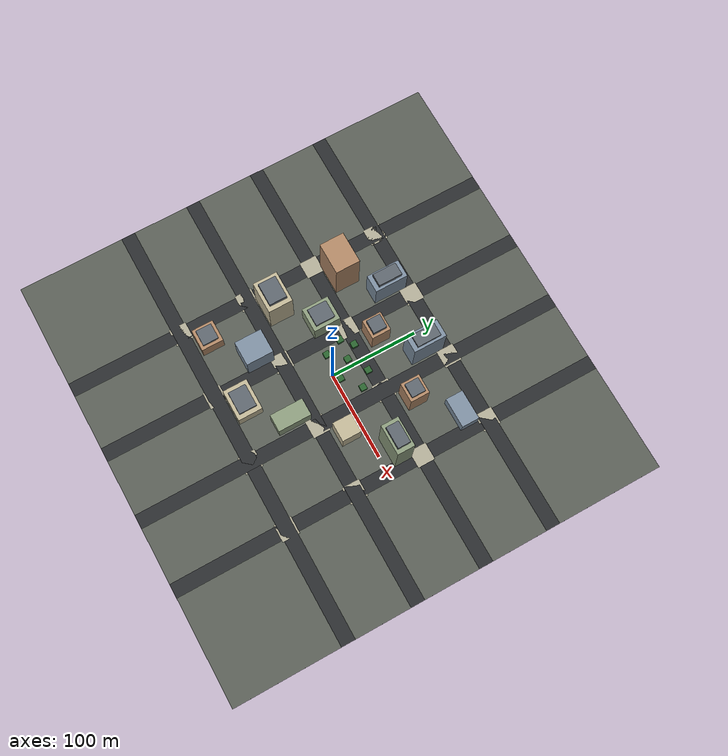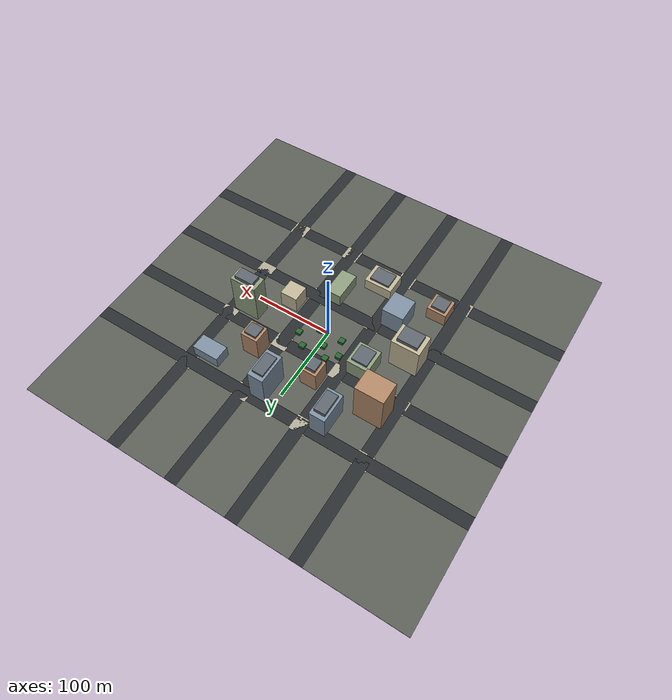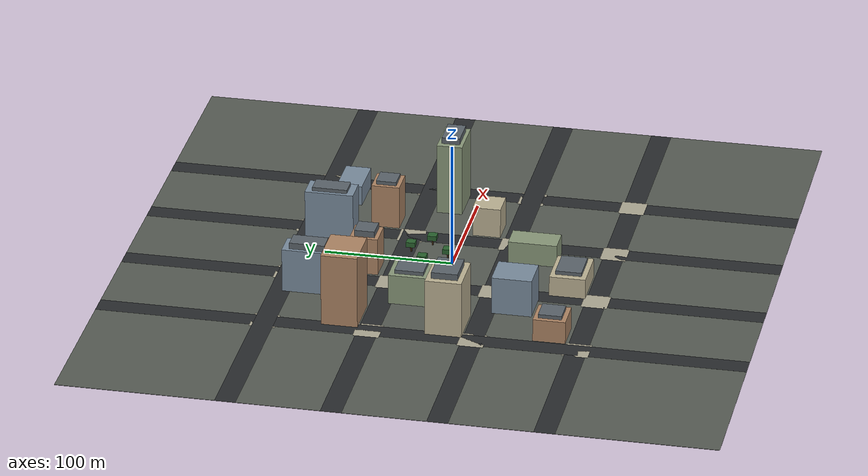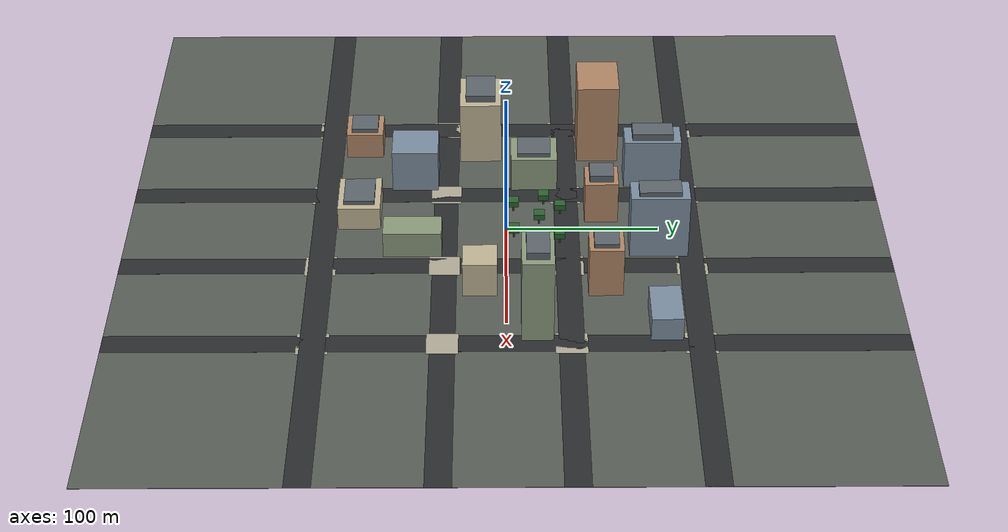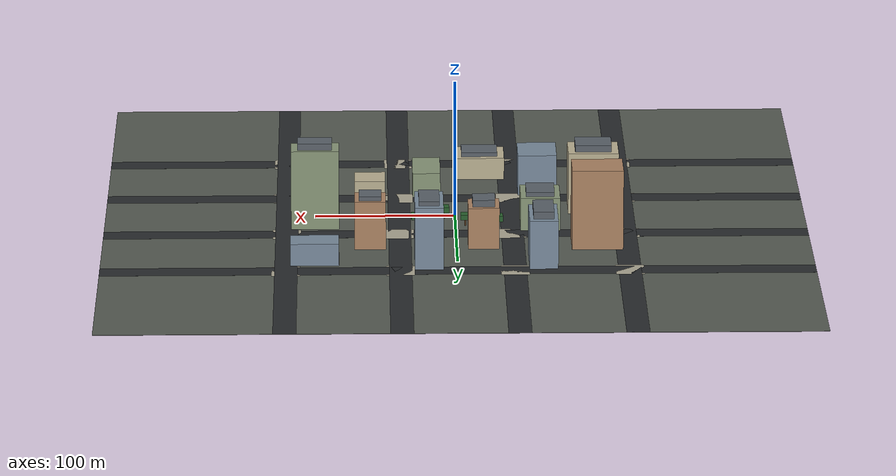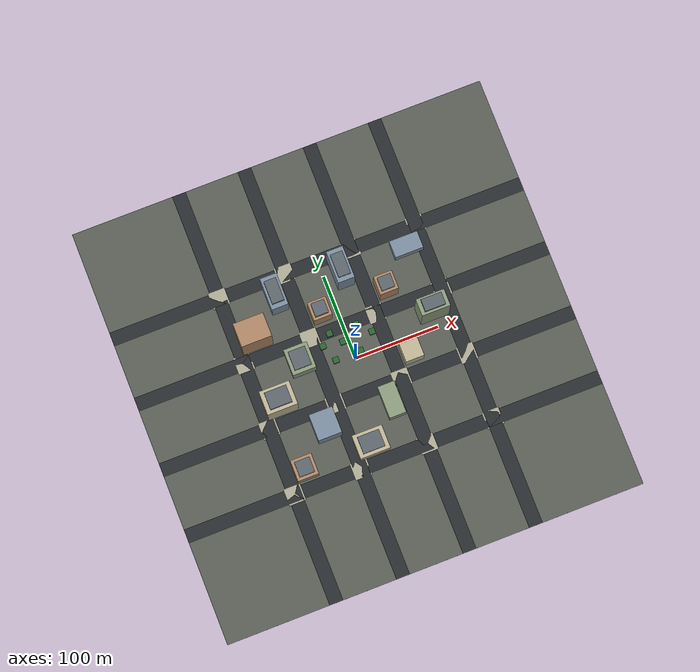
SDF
<?xml version="1.0"?>
<!-- Compact urban visual-navigation world. World/body coordinates are ENU. -->
<sdf version="1.10">
  <world name="city">
    <physics name="1ms" type="ignored"><max_step_size>0.001</max_step_size><real_time_factor>1.0</real_time_factor></physics>
    <plugin filename="gz-sim-physics-system" name="gz::sim::systems::Physics"/>
    <plugin filename="gz-sim-user-commands-system" name="gz::sim::systems::UserCommands"/>
    <plugin filename="gz-sim-scene-broadcaster-system" name="gz::sim::systems::SceneBroadcaster"/>
    <plugin filename="gz-sim-sensors-system" name="gz::sim::systems::Sensors"><render_engine>ogre2</render_engine></plugin>
    <plugin filename="gz-sim-imu-system" name="gz::sim::systems::Imu"/>
    <plugin filename="gz-sim-air-pressure-system" name="gz::sim::systems::AirPressure"/>
    <plugin filename="gz-sim-navsat-system" name="gz::sim::systems::NavSat"/>
    <spherical_coordinates><surface_model>EARTH_WGS84</surface_model><world_frame_orientation>ENU</world_frame_orientation>
      <latitude_deg>25.0330</latitude_deg><longitude_deg>121.5654</longitude_deg><elevation>10</elevation><heading_deg>0</heading_deg></spherical_coordinates>
    <scene><ambient>0.62 0.62 0.62 1</ambient><background>0.62 0.72 0.82 1</background><shadows>false</shadows></scene>
    <light type="directional" name="sun"><cast_shadows>false</cast_shadows><pose>0 0 150 0 0 0</pose>
      <diffuse>0.95 0.94 0.88 1</diffuse><specular>0.15 0.15 0.15 1</specular><direction>-0.4 0.2 -0.9</direction></light>
    <include><uri>model://city</uri></include>
  </world>
</sdf>

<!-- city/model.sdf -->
<sdf version="1.9"><model name="city"><static>true</static><link name="ground"><pose>0.00 0.00 -0.15 0 0 0</pose>
          <visual name="visual"><geometry><box><size>500.00 500.00 0.30</size></box></geometry>
          <material><ambient>0.34 0.36 0.33 1</ambient><diffuse>0.34 0.36 0.33 1</diffuse></material></visual>
          <collision name="collision"><geometry><box><size>500.00 500.00 0.30</size></box></geometry></collision></link><link name="road_x_0"><pose>-120.00 0.00 0.01 0 0 0</pose>
          <visual name="visual"><geometry><box><size>16.00 500.00 0.01</size></box></geometry>
          <material><ambient>0.16 0.17 0.18 1</ambient><diffuse>0.16 0.17 0.18 1</diffuse></material></visual>
          <collision name="collision"><geometry><box><size>16.00 500.00 0.01</size></box></geometry></collision></link><link name="road_x_1"><pose>-40.00 0.00 0.01 0 0 0</pose>
          <visual name="visual"><geometry><box><size>16.00 500.00 0.01</size></box></geometry>
          <material><ambient>0.16 0.17 0.18 1</ambient><diffuse>0.16 0.17 0.18 1</diffuse></material></visual>
          <collision name="collision"><geometry><box><size>16.00 500.00 0.01</size></box></geometry></collision></link><link name="road_x_2"><pose>40.00 0.00 0.01 0 0 0</pose>
          <visual name="visual"><geometry><box><size>16.00 500.00 0.01</size></box></geometry>
          <material><ambient>0.16 0.17 0.18 1</ambient><diffuse>0.16 0.17 0.18 1</diffuse></material></visual>
          <collision name="collision"><geometry><box><size>16.00 500.00 0.01</size></box></geometry></collision></link><link name="road_x_3"><pose>120.00 0.00 0.01 0 0 0</pose>
          <visual name="visual"><geometry><box><size>16.00 500.00 0.01</size></box></geometry>
          <material><ambient>0.16 0.17 0.18 1</ambient><diffuse>0.16 0.17 0.18 1</diffuse></material></visual>
          <collision name="collision"><geometry><box><size>16.00 500.00 0.01</size></box></geometry></collision></link><link name="road_y_0"><pose>0.00 -120.00 0.01 0 0 0</pose>
          <visual name="visual"><geometry><box><size>500.00 16.00 0.01</size></box></geometry>
          <material><ambient>0.16 0.17 0.18 1</ambient><diffuse>0.16 0.17 0.18 1</diffuse></material></visual>
          <collision name="collision"><geometry><box><size>500.00 16.00 0.01</size></box></geometry></collision></link><link name="road_y_1"><pose>0.00 -40.00 0.01 0 0 0</pose>
          <visual name="visual"><geometry><box><size>500.00 16.00 0.01</size></box></geometry>
          <material><ambient>0.16 0.17 0.18 1</ambient><diffuse>0.16 0.17 0.18 1</diffuse></material></visual>
          <collision name="collision"><geometry><box><size>500.00 16.00 0.01</size></box></geometry></collision></link><link name="road_y_2"><pose>0.00 40.00 0.01 0 0 0</pose>
          <visual name="visual"><geometry><box><size>500.00 16.00 0.01</size></box></geometry>
          <material><ambient>0.16 0.17 0.18 1</ambient><diffuse>0.16 0.17 0.18 1</diffuse></material></visual>
          <collision name="collision"><geometry><box><size>500.00 16.00 0.01</size></box></geometry></collision></link><link name="road_y_3"><pose>0.00 120.00 0.01 0 0 0</pose>
          <visual name="visual"><geometry><box><size>500.00 16.00 0.01</size></box></geometry>
          <material><ambient>0.16 0.17 0.18 1</ambient><diffuse>0.16 0.17 0.18 1</diffuse></material></visual>
          <collision name="collision"><geometry><box><size>500.00 16.00 0.01</size></box></geometry></collision></link><link name="crosswalk_0_0"><pose>-120.00 -120.00 0.01 0 0 0</pose>
          <visual name="visual"><geometry><box><size>20.00 20.00 0.01</size></box></geometry>
          <material><ambient>0.68 0.66 0.58 1</ambient><diffuse>0.68 0.66 0.58 1</diffuse></material></visual>
          <collision name="collision"><geometry><box><size>20.00 20.00 0.01</size></box></geometry></collision></link><link name="crosswalk_0_1"><pose>-120.00 -40.00 0.01 0 0 0</pose>
          <visual name="visual"><geometry><box><size>20.00 20.00 0.01</size></box></geometry>
          <material><ambient>0.68 0.66 0.58 1</ambient><diffuse>0.68 0.66 0.58 1</diffuse></material></visual>
          <collision name="collision"><geometry><box><size>20.00 20.00 0.01</size></box></geometry></collision></link><link name="crosswalk_0_2"><pose>-120.00 40.00 0.01 0 0 0</pose>
          <visual name="visual"><geometry><box><size>20.00 20.00 0.01</size></box></geometry>
          <material><ambient>0.68 0.66 0.58 1</ambient><diffuse>0.68 0.66 0.58 1</diffuse></material></visual>
          <collision name="collision"><geometry><box><size>20.00 20.00 0.01</size></box></geometry></collision></link><link name="crosswalk_0_3"><pose>-120.00 120.00 0.01 0 0 0</pose>
          <visual name="visual"><geometry><box><size>20.00 20.00 0.01</size></box></geometry>
          <material><ambient>0.68 0.66 0.58 1</ambient><diffuse>0.68 0.66 0.58 1</diffuse></material></visual>
          <collision name="collision"><geometry><box><size>20.00 20.00 0.01</size></box></geometry></collision></link><link name="crosswalk_1_0"><pose>-40.00 -120.00 0.01 0 0 0</pose>
          <visual name="visual"><geometry><box><size>20.00 20.00 0.01</size></box></geometry>
          <material><ambient>0.68 0.66 0.58 1</ambient><diffuse>0.68 0.66 0.58 1</diffuse></material></visual>
          <collision name="collision"><geometry><box><size>20.00 20.00 0.01</size></box></geometry></collision></link><link name="crosswalk_1_1"><pose>-40.00 -40.00 0.01 0 0 0</pose>
          <visual name="visual"><geometry><box><size>20.00 20.00 0.01</size></box></geometry>
          <material><ambient>0.68 0.66 0.58 1</ambient><diffuse>0.68 0.66 0.58 1</diffuse></material></visual>
          <collision name="collision"><geometry><box><size>20.00 20.00 0.01</size></box></geometry></collision></link><link name="crosswalk_1_2"><pose>-40.00 40.00 0.01 0 0 0</pose>
          <visual name="visual"><geometry><box><size>20.00 20.00 0.01</size></box></geometry>
          <material><ambient>0.68 0.66 0.58 1</ambient><diffuse>0.68 0.66 0.58 1</diffuse></material></visual>
          <collision name="collision"><geometry><box><size>20.00 20.00 0.01</size></box></geometry></collision></link><link name="crosswalk_1_3"><pose>-40.00 120.00 0.01 0 0 0</pose>
          <visual name="visual"><geometry><box><size>20.00 20.00 0.01</size></box></geometry>
          <material><ambient>0.68 0.66 0.58 1</ambient><diffuse>0.68 0.66 0.58 1</diffuse></material></visual>
          <collision name="collision"><geometry><box><size>20.00 20.00 0.01</size></box></geometry></collision></link><link name="crosswalk_2_0"><pose>40.00 -120.00 0.01 0 0 0</pose>
          <visual name="visual"><geometry><box><size>20.00 20.00 0.01</size></box></geometry>
          <material><ambient>0.68 0.66 0.58 1</ambient><diffuse>0.68 0.66 0.58 1</diffuse></material></visual>
          <collision name="collision"><geometry><box><size>20.00 20.00 0.01</size></box></geometry></collision></link><link name="crosswalk_2_1"><pose>40.00 -40.00 0.01 0 0 0</pose>
          <visual name="visual"><geometry><box><size>20.00 20.00 0.01</size></box></geometry>
          <material><ambient>0.68 0.66 0.58 1</ambient><diffuse>0.68 0.66 0.58 1</diffuse></material></visual>
          <collision name="collision"><geometry><box><size>20.00 20.00 0.01</size></box></geometry></collision></link><link name="crosswalk_2_2"><pose>40.00 40.00 0.01 0 0 0</pose>
          <visual name="visual"><geometry><box><size>20.00 20.00 0.01</size></box></geometry>
          <material><ambient>0.68 0.66 0.58 1</ambient><diffuse>0.68 0.66 0.58 1</diffuse></material></visual>
          <collision name="collision"><geometry><box><size>20.00 20.00 0.01</size></box></geometry></collision></link><link name="crosswalk_2_3"><pose>40.00 120.00 0.01 0 0 0</pose>
          <visual name="visual"><geometry><box><size>20.00 20.00 0.01</size></box></geometry>
          <material><ambient>0.68 0.66 0.58 1</ambient><diffuse>0.68 0.66 0.58 1</diffuse></material></visual>
          <collision name="collision"><geometry><box><size>20.00 20.00 0.01</size></box></geometry></collision></link><link name="crosswalk_3_0"><pose>120.00 -120.00 0.01 0 0 0</pose>
          <visual name="visual"><geometry><box><size>20.00 20.00 0.01</size></box></geometry>
          <material><ambient>0.68 0.66 0.58 1</ambient><diffuse>0.68 0.66 0.58 1</diffuse></material></visual>
          <collision name="collision"><geometry><box><size>20.00 20.00 0.01</size></box></geometry></collision></link><link name="crosswalk_3_1"><pose>120.00 -40.00 0.01 0 0 0</pose>
          <visual name="visual"><geometry><box><size>20.00 20.00 0.01</size></box></geometry>
          <material><ambient>0.68 0.66 0.58 1</ambient><diffuse>0.68 0.66 0.58 1</diffuse></material></visual>
          <collision name="collision"><geometry><box><size>20.00 20.00 0.01</size></box></geometry></collision></link><link name="crosswalk_3_2"><pose>120.00 40.00 0.01 0 0 0</pose>
          <visual name="visual"><geometry><box><size>20.00 20.00 0.01</size></box></geometry>
          <material><ambient>0.68 0.66 0.58 1</ambient><diffuse>0.68 0.66 0.58 1</diffuse></material></visual>
          <collision name="collision"><geometry><box><size>20.00 20.00 0.01</size></box></geometry></collision></link><link name="crosswalk_3_3"><pose>120.00 120.00 0.01 0 0 0</pose>
          <visual name="visual"><geometry><box><size>20.00 20.00 0.01</size></box></geometry>
          <material><ambient>0.68 0.66 0.58 1</ambient><diffuse>0.68 0.66 0.58 1</diffuse></material></visual>
          <collision name="collision"><geometry><box><size>20.00 20.00 0.01</size></box></geometry></collision></link><link name="building_0"><pose>-99.00 -97.00 9.08 0 0 0</pose>
          <visual name="visual"><geometry><box><size>25.00 25.00 18.00</size></box></geometry>
          <material><ambient>0.68 0.52 0.39 1</ambient><diffuse>0.68 0.52 0.39 1</diffuse></material></visual>
          <collision name="collision"><geometry><box><size>25.00 25.00 18.00</size></box></geometry></collision></link><link name="roof_0"><pose>-99.00 -97.00 19.58 0 0 0</pose>
          <visual name="visual"><geometry><box><size>18.00 18.00 3.00</size></box></geometry>
          <material><ambient>0.36 0.39 0.42 1</ambient><diffuse>0.36 0.39 0.42 1</diffuse></material></visual>
          <collision name="collision"><geometry><box><size>18.00 18.00 3.00</size></box></geometry></collision></link><link name="building_1"><pose>-60.00 -61.00 15.08 0 0 0</pose>
          <visual name="visual"><geometry><box><size>28.00 31.00 30.00</size></box></geometry>
          <material><ambient>0.48 0.55 0.62 1</ambient><diffuse>0.48 0.55 0.62 1</diffuse></material></visual>
          <collision name="collision"><geometry><box><size>28.00 31.00 30.00</size></box></geometry></collision></link><link name="building_2"><pose>-99.00 -17.00 22.58 0 0 0</pose>
          <visual name="visual"><geometry><box><size>36.00 28.00 45.00</size></box></geometry>
          <material><ambient>0.74 0.70 0.58 1</ambient><diffuse>0.74 0.70 0.58 1</diffuse></material></visual>
          <collision name="collision"><geometry><box><size>36.00 28.00 45.00</size></box></geometry></collision></link><link name="roof_2"><pose>-99.00 -17.00 47.58 0 0 0</pose>
          <visual name="visual"><geometry><box><size>25.92 20.16 5.00</size></box></geometry>
          <material><ambient>0.36 0.39 0.42 1</ambient><diffuse>0.36 0.39 0.42 1</diffuse></material></visual>
          <collision name="collision"><geometry><box><size>25.92 20.16 5.00</size></box></geometry></collision></link><link name="building_3"><pose>-60.00 19.00 12.08 0 0 0</pose>
          <visual name="visual"><geometry><box><size>28.00 31.00 24.00</size></box></geometry>
          <material><ambient>0.54 0.60 0.48 1</ambient><diffuse>0.54 0.60 0.48 1</diffuse></material></visual>
          <collision name="collision"><geometry><box><size>28.00 31.00 24.00</size></box></geometry></collision></link><link name="roof_3"><pose>-60.00 19.00 25.58 0 0 0</pose>
          <visual name="visual"><geometry><box><size>20.16 22.32 3.00</size></box></geometry>
          <material><ambient>0.36 0.39 0.42 1</ambient><diffuse>0.36 0.39 0.42 1</diffuse></material></visual>
          <collision name="collision"><geometry><box><size>20.16 22.32 3.00</size></box></geometry></collision></link><link name="building_4"><pose>-99.00 63.00 29.08 0 0 0</pose>
          <visual name="visual"><geometry><box><size>36.00 28.00 58.00</size></box></geometry>
          <material><ambient>0.68 0.52 0.39 1</ambient><diffuse>0.68 0.52 0.39 1</diffuse></material></visual>
          <collision name="collision"><geometry><box><size>36.00 28.00 58.00</size></box></geometry></collision></link><link name="building_5"><pose>-60.00 99.00 17.58 0 0 0</pose>
          <visual name="visual"><geometry><box><size>20.00 38.00 35.00</size></box></geometry>
          <material><ambient>0.48 0.55 0.62 1</ambient><diffuse>0.48 0.55 0.62 1</diffuse></material></visual>
          <collision name="collision"><geometry><box><size>20.00 38.00 35.00</size></box></geometry></collision></link><link name="roof_5"><pose>-60.00 99.00 37.58 0 0 0</pose>
          <visual name="visual"><geometry><box><size>14.40 27.36 5.00</size></box></geometry>
          <material><ambient>0.36 0.39 0.42 1</ambient><diffuse>0.36 0.39 0.42 1</diffuse></material></visual>
          <collision name="collision"><geometry><box><size>14.40 27.36 5.00</size></box></geometry></collision></link><link name="building_6"><pose>-19.00 -97.00 8.08 0 0 0</pose>
          <visual name="visual"><geometry><box><size>36.00 28.00 16.00</size></box></geometry>
          <material><ambient>0.74 0.70 0.58 1</ambient><diffuse>0.74 0.70 0.58 1</diffuse></material></visual>
          <collision name="collision"><geometry><box><size>36.00 28.00 16.00</size></box></geometry></collision></link><link name="roof_6"><pose>-19.00 -97.00 17.58 0 0 0</pose>
          <visual name="visual"><geometry><box><size>25.92 20.16 3.00</size></box></geometry>
          <material><ambient>0.36 0.39 0.42 1</ambient><diffuse>0.36 0.39 0.42 1</diffuse></material></visual>
          <collision name="collision"><geometry><box><size>25.92 20.16 3.00</size></box></geometry></collision></link><link name="building_7"><pose>20.00 -61.00 9.08 0 0 0</pose>
          <visual name="visual"><geometry><box><size>20.00 38.00 18.00</size></box></geometry>
          <material><ambient>0.54 0.60 0.48 1</ambient><diffuse>0.54 0.60 0.48 1</diffuse></material></visual>
          <collision name="collision"><geometry><box><size>20.00 38.00 18.00</size></box></geometry></collision></link><link name="building_8"><pose>-19.00 63.00 15.08 0 0 0</pose>
          <visual name="visual"><geometry><box><size>22.00 22.00 30.00</size></box></geometry>
          <material><ambient>0.68 0.52 0.39 1</ambient><diffuse>0.68 0.52 0.39 1</diffuse></material></visual>
          <collision name="collision"><geometry><box><size>22.00 22.00 30.00</size></box></geometry></collision></link><link name="roof_8"><pose>-19.00 63.00 32.58 0 0 0</pose>
          <visual name="visual"><geometry><box><size>15.84 15.84 5.00</size></box></geometry>
          <material><ambient>0.36 0.39 0.42 1</ambient><diffuse>0.36 0.39 0.42 1</diffuse></material></visual>
          <collision name="collision"><geometry><box><size>15.84 15.84 5.00</size></box></geometry></collision></link><link name="building_9"><pose>20.00 99.00 22.58 0 0 0</pose>
          <visual name="visual"><geometry><box><size>20.00 38.00 45.00</size></box></geometry>
          <material><ambient>0.48 0.55 0.62 1</ambient><diffuse>0.48 0.55 0.62 1</diffuse></material></visual>
          <collision name="collision"><geometry><box><size>20.00 38.00 45.00</size></box></geometry></collision></link><link name="roof_9"><pose>20.00 99.00 46.58 0 0 0</pose>
          <visual name="visual"><geometry><box><size>14.40 27.36 3.00</size></box></geometry>
          <material><ambient>0.36 0.39 0.42 1</ambient><diffuse>0.36 0.39 0.42 1</diffuse></material></visual>
          <collision name="collision"><geometry><box><size>14.40 27.36 3.00</size></box></geometry></collision></link><link name="building_10"><pose>61.00 -17.00 12.08 0 0 0</pose>
          <visual name="visual"><geometry><box><size>22.00 22.00 24.00</size></box></geometry>
          <material><ambient>0.74 0.70 0.58 1</ambient><diffuse>0.74 0.70 0.58 1</diffuse></material></visual>
          <collision name="collision"><geometry><box><size>22.00 22.00 24.00</size></box></geometry></collision></link><link name="building_11"><pose>100.00 19.00 29.08 0 0 0</pose>
          <visual name="visual"><geometry><box><size>34.00 20.00 58.00</size></box></geometry>
          <material><ambient>0.54 0.60 0.48 1</ambient><diffuse>0.54 0.60 0.48 1</diffuse></material></visual>
          <collision name="collision"><geometry><box><size>34.00 20.00 58.00</size></box></geometry></collision></link><link name="roof_11"><pose>100.00 19.00 60.58 0 0 0</pose>
          <visual name="visual"><geometry><box><size>24.48 14.40 5.00</size></box></geometry>
          <material><ambient>0.36 0.39 0.42 1</ambient><diffuse>0.36 0.39 0.42 1</diffuse></material></visual>
          <collision name="collision"><geometry><box><size>24.48 14.40 5.00</size></box></geometry></collision></link><link name="building_12"><pose>61.00 63.00 17.58 0 0 0</pose>
          <visual name="visual"><geometry><box><size>22.00 22.00 35.00</size></box></geometry>
          <material><ambient>0.68 0.52 0.39 1</ambient><diffuse>0.68 0.52 0.39 1</diffuse></material></visual>
          <collision name="collision"><geometry><box><size>22.00 22.00 35.00</size></box></geometry></collision></link><link name="roof_12"><pose>61.00 63.00 36.58 0 0 0</pose>
          <visual name="visual"><geometry><box><size>15.84 15.84 3.00</size></box></geometry>
          <material><ambient>0.36 0.39 0.42 1</ambient><diffuse>0.36 0.39 0.42 1</diffuse></material></visual>
          <collision name="collision"><geometry><box><size>15.84 15.84 3.00</size></box></geometry></collision></link><link name="building_13"><pose>100.00 99.00 8.08 0 0 0</pose>
          <visual name="visual"><geometry><box><size>34.00 20.00 16.00</size></box></geometry>
          <material><ambient>0.48 0.55 0.62 1</ambient><diffuse>0.48 0.55 0.62 1</diffuse></material></visual>
          <collision name="collision"><geometry><box><size>34.00 20.00 16.00</size></box></geometry></collision></link><link name="tree_trunk_0"><pose>-30.00 25.00 3.20 0 0 0</pose>
          <visual name="visual"><geometry><box><size>1.20 1.20 6.40</size></box></geometry>
          <material><ambient>0.30 0.20 0.10 1</ambient><diffuse>0.30 0.20 0.10 1</diffuse></material></visual>
          <collision name="collision"><geometry><box><size>1.20 1.20 6.40</size></box></geometry></collision></link><link name="tree_crown_0"><pose>-30.00 25.00 7.00 0 0 0</pose>
          <visual name="visual"><geometry><box><size>7.00 7.00 4.00</size></box></geometry>
          <material><ambient>0.16 0.38 0.18 1</ambient><diffuse>0.16 0.38 0.18 1</diffuse></material></visual>
          <collision name="collision"><geometry><box><size>7.00 7.00 4.00</size></box></geometry></collision></link><link name="tree_trunk_1"><pose>-18.00 36.00 3.20 0 0 0</pose>
          <visual name="visual"><geometry><box><size>1.20 1.20 6.40</size></box></geometry>
          <material><ambient>0.30 0.20 0.10 1</ambient><diffuse>0.30 0.20 0.10 1</diffuse></material></visual>
          <collision name="collision"><geometry><box><size>1.20 1.20 6.40</size></box></geometry></collision></link><link name="tree_crown_1"><pose>-18.00 36.00 7.00 0 0 0</pose>
          <visual name="visual"><geometry><box><size>7.00 7.00 4.00</size></box></geometry>
          <material><ambient>0.16 0.38 0.18 1</ambient><diffuse>0.16 0.38 0.18 1</diffuse></material></visual>
          <collision name="collision"><geometry><box><size>7.00 7.00 4.00</size></box></geometry></collision></link><link name="tree_trunk_2"><pose>-7.00 22.00 3.20 0 0 0</pose>
          <visual name="visual"><geometry><box><size>1.20 1.20 6.40</size></box></geometry>
          <material><ambient>0.30 0.20 0.10 1</ambient><diffuse>0.30 0.20 0.10 1</diffuse></material></visual>
          <collision name="collision"><geometry><box><size>1.20 1.20 6.40</size></box></geometry></collision></link><link name="tree_crown_2"><pose>-7.00 22.00 7.00 0 0 0</pose>
          <visual name="visual"><geometry><box><size>7.00 7.00 4.00</size></box></geometry>
          <material><ambient>0.16 0.38 0.18 1</ambient><diffuse>0.16 0.38 0.18 1</diffuse></material></visual>
          <collision name="collision"><geometry><box><size>7.00 7.00 4.00</size></box></geometry></collision></link><link name="tree_trunk_3"><pose>14.00 35.00 3.20 0 0 0</pose>
          <visual name="visual"><geometry><box><size>1.20 1.20 6.40</size></box></geometry>
          <material><ambient>0.30 0.20 0.10 1</ambient><diffuse>0.30 0.20 0.10 1</diffuse></material></visual>
          <collision name="collision"><geometry><box><size>1.20 1.20 6.40</size></box></geometry></collision></link><link name="tree_crown_3"><pose>14.00 35.00 7.00 0 0 0</pose>
          <visual name="visual"><geometry><box><size>7.00 7.00 4.00</size></box></geometry>
          <material><ambient>0.16 0.38 0.18 1</ambient><diffuse>0.16 0.38 0.18 1</diffuse></material></visual>
          <collision name="collision"><geometry><box><size>7.00 7.00 4.00</size></box></geometry></collision></link><link name="tree_trunk_4"><pose>28.00 21.00 3.20 0 0 0</pose>
          <visual name="visual"><geometry><box><size>1.20 1.20 6.40</size></box></geometry>
          <material><ambient>0.30 0.20 0.10 1</ambient><diffuse>0.30 0.20 0.10 1</diffuse></material></visual>
          <collision name="collision"><geometry><box><size>1.20 1.20 6.40</size></box></geometry></collision></link><link name="tree_crown_4"><pose>28.00 21.00 7.00 0 0 0</pose>
          <visual name="visual"><geometry><box><size>7.00 7.00 4.00</size></box></geometry>
          <material><ambient>0.16 0.38 0.18 1</ambient><diffuse>0.16 0.38 0.18 1</diffuse></material></visual>
          <collision name="collision"><geometry><box><size>7.00 7.00 4.00</size></box></geometry></collision></link><link name="tree_trunk_5"><pose>8.00 5.00 3.20 0 0 0</pose>
          <visual name="visual"><geometry><box><size>1.20 1.20 6.40</size></box></geometry>
          <material><ambient>0.30 0.20 0.10 1</ambient><diffuse>0.30 0.20 0.10 1</diffuse></material></visual>
          <collision name="collision"><geometry><box><size>1.20 1.20 6.40</size></box></geometry></collision></link><link name="tree_crown_5"><pose>8.00 5.00 7.00 0 0 0</pose>
          <visual name="visual"><geometry><box><size>7.00 7.00 4.00</size></box></geometry>
          <material><ambient>0.16 0.38 0.18 1</ambient><diffuse>0.16 0.38 0.18 1</diffuse></material></visual>
          <collision name="collision"><geometry><box><size>7.00 7.00 4.00</size></box></geometry></collision></link><link name="tree_trunk_6"><pose>-22.00 5.00 3.20 0 0 0</pose>
          <visual name="visual"><geometry><box><size>1.20 1.20 6.40</size></box></geometry>
          <material><ambient>0.30 0.20 0.10 1</ambient><diffuse>0.30 0.20 0.10 1</diffuse></material></visual>
          <collision name="collision"><geometry><box><size>1.20 1.20 6.40</size></box></geometry></collision></link><link name="tree_crown_6"><pose>-22.00 5.00 7.00 0 0 0</pose>
          <visual name="visual"><geometry><box><size>7.00 7.00 4.00</size></box></geometry>
          <material><ambient>0.16 0.38 0.18 1</ambient><diffuse>0.16 0.38 0.18 1</diffuse></material></visual>
          <collision name="collision"><geometry><box><size>7.00 7.00 4.00</size></box></geometry></collision></link></model></sdf>
